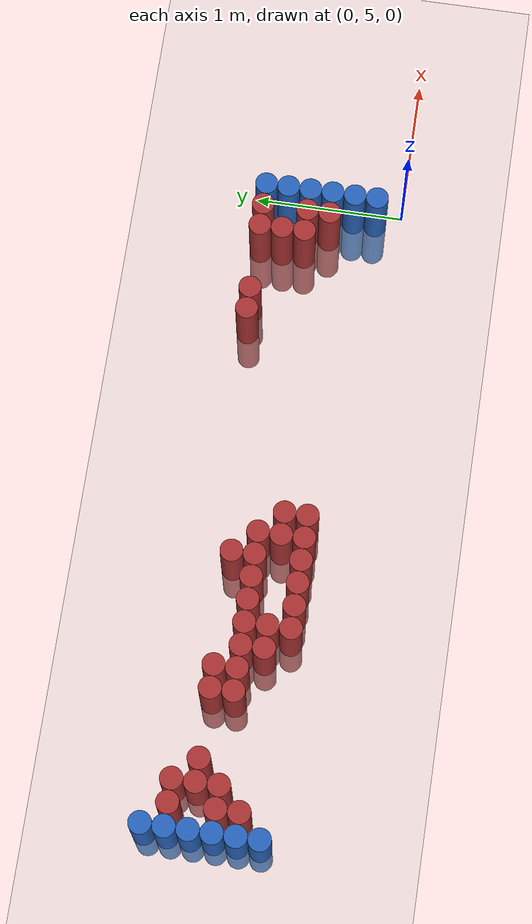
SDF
<sdf version="1.6">
 <world name="default">
  <model name="ground_plane">
   <static>1</static>
   <link name="link">
    <collision name="collision">
     <geometry><plane><normal>0 0 1</normal><size>100 100</size></plane></geometry>
     <surface><friction><ode><mu>100</mu><mu2>50</mu2></ode></friction></surface>
    </collision>
    <visual name="visual">
     <cast_shadows>0</cast_shadows>
     <geometry><plane><normal>0 0 1</normal><size>100 100</size></plane></geometry>
     <material>
      <script><uri>file://media/materials/scripts/gazebo.material</uri><name>Gazebo/Grey</name></script>
     </material>
    </visual>
   </link>
  </model>
  <model name="unit_cylinder_97">
   <static>1</static>
   <pose>-4.425000 5.325000 0.000000 0.000000 0.000000 0.000000</pose>
   <link name="link">
    <inertial>
     <mass>1</mass>
     <inertia><ixx>0.145833</ixx><ixy>0</ixy><ixz>0</ixz><iyy>0.145833</iyy><iyz>0</iyz><izz>0.125</izz></inertia>
    </inertial>
    <collision name="collision">
     <geometry><cylinder><radius>0.075000</radius><length>1</length></cylinder></geometry>
    </collision>
    <visual name="visual">
     <geometry><cylinder><radius>0.075000</radius><length>1</length></cylinder></geometry>
     <material>
      <ambient>0.152000 0.379000 0.720000 1</ambient>
      <diffuse>0.152000 0.379000 0.720000 1</diffuse>
     </material>
     <material>
      <script><name>Gazebo/Grey</name><uri>file://media/materials/scripts/gazebo.material</uri></script>
     </material>
    </visual>
   </link>
  </model>
  <model name="unit_cylinder_98">
   <static>1</static>
   <pose>-4.425000 5.475000 0.000000 0.000000 0.000000 0.000000</pose>
   <link name="link">
    <inertial>
     <mass>1</mass>
     <inertia><ixx>0.145833</ixx><ixy>0</ixy><ixz>0</ixz><iyy>0.145833</iyy><iyz>0</iyz><izz>0.125</izz></inertia>
    </inertial>
    <collision name="collision">
     <geometry><cylinder><radius>0.075000</radius><length>1</length></cylinder></geometry>
    </collision>
    <visual name="visual">
     <geometry><cylinder><radius>0.075000</radius><length>1</length></cylinder></geometry>
     <material>
      <ambient>0.152000 0.379000 0.720000 1</ambient>
      <diffuse>0.152000 0.379000 0.720000 1</diffuse>
     </material>
     <material>
      <script><name>Gazebo/Grey</name><uri>file://media/materials/scripts/gazebo.material</uri></script>
     </material>
    </visual>
   </link>
  </model>
  <model name="unit_cylinder_99">
   <static>1</static>
   <pose>-4.425000 5.625000 0.000000 0.000000 0.000000 0.000000</pose>
   <link name="link">
    <inertial>
     <mass>1</mass>
     <inertia><ixx>0.145833</ixx><ixy>0</ixy><ixz>0</ixz><iyy>0.145833</iyy><iyz>0</iyz><izz>0.125</izz></inertia>
    </inertial>
    <collision name="collision">
     <geometry><cylinder><radius>0.075000</radius><length>1</length></cylinder></geometry>
    </collision>
    <visual name="visual">
     <geometry><cylinder><radius>0.075000</radius><length>1</length></cylinder></geometry>
     <material>
      <ambient>0.152000 0.379000 0.720000 1</ambient>
      <diffuse>0.152000 0.379000 0.720000 1</diffuse>
     </material>
     <material>
      <script><name>Gazebo/Grey</name><uri>file://media/materials/scripts/gazebo.material</uri></script>
     </material>
    </visual>
   </link>
  </model>
  <model name="unit_cylinder_100">
   <static>1</static>
   <pose>-4.425000 5.775000 0.000000 0.000000 0.000000 0.000000</pose>
   <link name="link">
    <inertial>
     <mass>1</mass>
     <inertia><ixx>0.145833</ixx><ixy>0</ixy><ixz>0</ixz><iyy>0.145833</iyy><iyz>0</iyz><izz>0.125</izz></inertia>
    </inertial>
    <collision name="collision">
     <geometry><cylinder><radius>0.075000</radius><length>1</length></cylinder></geometry>
    </collision>
    <visual name="visual">
     <geometry><cylinder><radius>0.075000</radius><length>1</length></cylinder></geometry>
     <material>
      <ambient>0.152000 0.379000 0.720000 1</ambient>
      <diffuse>0.152000 0.379000 0.720000 1</diffuse>
     </material>
     <material>
      <script><name>Gazebo/Grey</name><uri>file://media/materials/scripts/gazebo.material</uri></script>
     </material>
    </visual>
   </link>
  </model>
  <model name="unit_cylinder_101">
   <static>1</static>
   <pose>-4.425000 5.925000 0.000000 0.000000 0.000000 0.000000</pose>
   <link name="link">
    <inertial>
     <mass>1</mass>
     <inertia><ixx>0.145833</ixx><ixy>0</ixy><ixz>0</ixz><iyy>0.145833</iyy><iyz>0</iyz><izz>0.125</izz></inertia>
    </inertial>
    <collision name="collision">
     <geometry><cylinder><radius>0.075000</radius><length>1</length></cylinder></geometry>
    </collision>
    <visual name="visual">
     <geometry><cylinder><radius>0.075000</radius><length>1</length></cylinder></geometry>
     <material>
      <ambient>0.152000 0.379000 0.720000 1</ambient>
      <diffuse>0.152000 0.379000 0.720000 1</diffuse>
     </material>
     <material>
      <script><name>Gazebo/Grey</name><uri>file://media/materials/scripts/gazebo.material</uri></script>
     </material>
    </visual>
   </link>
  </model>
  <model name="unit_cylinder_102">
   <static>1</static>
   <pose>-4.425000 6.075000 0.000000 0.000000 0.000000 0.000000</pose>
   <link name="link">
    <inertial>
     <mass>1</mass>
     <inertia><ixx>0.145833</ixx><ixy>0</ixy><ixz>0</ixz><iyy>0.145833</iyy><iyz>0</iyz><izz>0.125</izz></inertia>
    </inertial>
    <collision name="collision">
     <geometry><cylinder><radius>0.075000</radius><length>1</length></cylinder></geometry>
    </collision>
    <visual name="visual">
     <geometry><cylinder><radius>0.075000</radius><length>1</length></cylinder></geometry>
     <material>
      <ambient>0.152000 0.379000 0.720000 1</ambient>
      <diffuse>0.152000 0.379000 0.720000 1</diffuse>
     </material>
     <material>
      <script><name>Gazebo/Grey</name><uri>file://media/materials/scripts/gazebo.material</uri></script>
     </material>
    </visual>
   </link>
  </model>
  <model name="unit_cylinder_126">
   <static>1</static>
   <pose>-4.275000 5.475000 0.000000 0.000000 0.000000 0.000000</pose>
   <link name="link">
    <inertial>
     <mass>1</mass>
     <inertia><ixx>0.145833</ixx><ixy>0</ixy><ixz>0</ixz><iyy>0.145833</iyy><iyz>0</iyz><izz>0.125</izz></inertia>
    </inertial>
    <collision name="collision">
     <geometry><cylinder><radius>0.075000</radius><length>1</length></cylinder></geometry>
    </collision>
    <visual name="visual">
     <geometry><cylinder><radius>0.075000</radius><length>1</length></cylinder></geometry>
     <material>
      <ambient>0.648000 0.192000 0.192000 1</ambient>
      <diffuse>0.648000 0.192000 0.192000 1</diffuse>
     </material>
     <material>
      <script><name>Gazebo/Grey</name><uri>file://media/materials/scripts/gazebo.material</uri></script>
     </material>
    </visual>
   </link>
  </model>
  <model name="unit_cylinder_127">
   <static>1</static>
   <pose>-4.275000 5.625000 0.000000 0.000000 0.000000 0.000000</pose>
   <link name="link">
    <inertial>
     <mass>1</mass>
     <inertia><ixx>0.145833</ixx><ixy>0</ixy><ixz>0</ixz><iyy>0.145833</iyy><iyz>0</iyz><izz>0.125</izz></inertia>
    </inertial>
    <collision name="collision">
     <geometry><cylinder><radius>0.075000</radius><length>1</length></cylinder></geometry>
    </collision>
    <visual name="visual">
     <geometry><cylinder><radius>0.075000</radius><length>1</length></cylinder></geometry>
     <material>
      <ambient>0.648000 0.192000 0.192000 1</ambient>
      <diffuse>0.648000 0.192000 0.192000 1</diffuse>
     </material>
     <material>
      <script><name>Gazebo/Grey</name><uri>file://media/materials/scripts/gazebo.material</uri></script>
     </material>
    </visual>
   </link>
  </model>
  <model name="unit_cylinder_128">
   <static>1</static>
   <pose>-4.275000 5.925000 0.000000 0.000000 0.000000 0.000000</pose>
   <link name="link">
    <inertial>
     <mass>1</mass>
     <inertia><ixx>0.145833</ixx><ixy>0</ixy><ixz>0</ixz><iyy>0.145833</iyy><iyz>0</iyz><izz>0.125</izz></inertia>
    </inertial>
    <collision name="collision">
     <geometry><cylinder><radius>0.075000</radius><length>1</length></cylinder></geometry>
    </collision>
    <visual name="visual">
     <geometry><cylinder><radius>0.075000</radius><length>1</length></cylinder></geometry>
     <material>
      <ambient>0.648000 0.192000 0.192000 1</ambient>
      <diffuse>0.648000 0.192000 0.192000 1</diffuse>
     </material>
     <material>
      <script><name>Gazebo/Grey</name><uri>file://media/materials/scripts/gazebo.material</uri></script>
     </material>
    </visual>
   </link>
  </model>
  <model name="unit_cylinder_138">
   <static>1</static>
   <pose>-4.125000 5.625000 0.000000 0.000000 0.000000 0.000000</pose>
   <link name="link">
    <inertial>
     <mass>1</mass>
     <inertia><ixx>0.145833</ixx><ixy>0</ixy><ixz>0</ixz><iyy>0.145833</iyy><iyz>0</iyz><izz>0.125</izz></inertia>
    </inertial>
    <collision name="collision">
     <geometry><cylinder><radius>0.075000</radius><length>1</length></cylinder></geometry>
    </collision>
    <visual name="visual">
     <geometry><cylinder><radius>0.075000</radius><length>1</length></cylinder></geometry>
     <material>
      <ambient>0.648000 0.192000 0.192000 1</ambient>
      <diffuse>0.648000 0.192000 0.192000 1</diffuse>
     </material>
     <material>
      <script><name>Gazebo/Grey</name><uri>file://media/materials/scripts/gazebo.material</uri></script>
     </material>
    </visual>
   </link>
  </model>
  <model name="unit_cylinder_139">
   <static>1</static>
   <pose>-4.125000 5.775000 0.000000 0.000000 0.000000 0.000000</pose>
   <link name="link">
    <inertial>
     <mass>1</mass>
     <inertia><ixx>0.145833</ixx><ixy>0</ixy><ixz>0</ixz><iyy>0.145833</iyy><iyz>0</iyz><izz>0.125</izz></inertia>
    </inertial>
    <collision name="collision">
     <geometry><cylinder><radius>0.075000</radius><length>1</length></cylinder></geometry>
    </collision>
    <visual name="visual">
     <geometry><cylinder><radius>0.075000</radius><length>1</length></cylinder></geometry>
     <material>
      <ambient>0.648000 0.192000 0.192000 1</ambient>
      <diffuse>0.648000 0.192000 0.192000 1</diffuse>
     </material>
     <material>
      <script><name>Gazebo/Grey</name><uri>file://media/materials/scripts/gazebo.material</uri></script>
     </material>
    </visual>
   </link>
  </model>
  <model name="unit_cylinder_140">
   <static>1</static>
   <pose>-4.125000 5.925000 0.000000 0.000000 0.000000 0.000000</pose>
   <link name="link">
    <inertial>
     <mass>1</mass>
     <inertia><ixx>0.145833</ixx><ixy>0</ixy><ixz>0</ixz><iyy>0.145833</iyy><iyz>0</iyz><izz>0.125</izz></inertia>
    </inertial>
    <collision name="collision">
     <geometry><cylinder><radius>0.075000</radius><length>1</length></cylinder></geometry>
    </collision>
    <visual name="visual">
     <geometry><cylinder><radius>0.075000</radius><length>1</length></cylinder></geometry>
     <material>
      <ambient>0.648000 0.192000 0.192000 1</ambient>
      <diffuse>0.648000 0.192000 0.192000 1</diffuse>
     </material>
     <material>
      <script><name>Gazebo/Grey</name><uri>file://media/materials/scripts/gazebo.material</uri></script>
     </material>
    </visual>
   </link>
  </model>
  <model name="unit_cylinder_148">
   <static>1</static>
   <pose>-3.975000 5.775000 0.000000 0.000000 0.000000 0.000000</pose>
   <link name="link">
    <inertial>
     <mass>1</mass>
     <inertia><ixx>0.145833</ixx><ixy>0</ixy><ixz>0</ixz><iyy>0.145833</iyy><iyz>0</iyz><izz>0.125</izz></inertia>
    </inertial>
    <collision name="collision">
     <geometry><cylinder><radius>0.075000</radius><length>1</length></cylinder></geometry>
    </collision>
    <visual name="visual">
     <geometry><cylinder><radius>0.075000</radius><length>1</length></cylinder></geometry>
     <material>
      <ambient>0.648000 0.192000 0.192000 1</ambient>
      <diffuse>0.648000 0.192000 0.192000 1</diffuse>
     </material>
     <material>
      <script><name>Gazebo/Grey</name><uri>file://media/materials/scripts/gazebo.material</uri></script>
     </material>
    </visual>
   </link>
  </model>
  <model name="unit_cylinder_166">
   <static>1</static>
   <pose>-3.525000 5.625000 0.000000 0.000000 0.000000 0.000000</pose>
   <link name="link">
    <inertial>
     <mass>1</mass>
     <inertia><ixx>0.145833</ixx><ixy>0</ixy><ixz>0</ixz><iyy>0.145833</iyy><iyz>0</iyz><izz>0.125</izz></inertia>
    </inertial>
    <collision name="collision">
     <geometry><cylinder><radius>0.075000</radius><length>1</length></cylinder></geometry>
    </collision>
    <visual name="visual">
     <geometry><cylinder><radius>0.075000</radius><length>1</length></cylinder></geometry>
     <material>
      <ambient>0.648000 0.192000 0.192000 1</ambient>
      <diffuse>0.648000 0.192000 0.192000 1</diffuse>
     </material>
     <material>
      <script><name>Gazebo/Grey</name><uri>file://media/materials/scripts/gazebo.material</uri></script>
     </material>
    </visual>
   </link>
  </model>
  <model name="unit_cylinder_167">
   <static>1</static>
   <pose>-3.525000 5.775000 0.000000 0.000000 0.000000 0.000000</pose>
   <link name="link">
    <inertial>
     <mass>1</mass>
     <inertia><ixx>0.145833</ixx><ixy>0</ixy><ixz>0</ixz><iyy>0.145833</iyy><iyz>0</iyz><izz>0.125</izz></inertia>
    </inertial>
    <collision name="collision">
     <geometry><cylinder><radius>0.075000</radius><length>1</length></cylinder></geometry>
    </collision>
    <visual name="visual">
     <geometry><cylinder><radius>0.075000</radius><length>1</length></cylinder></geometry>
     <material>
      <ambient>0.648000 0.192000 0.192000 1</ambient>
      <diffuse>0.648000 0.192000 0.192000 1</diffuse>
     </material>
     <material>
      <script><name>Gazebo/Grey</name><uri>file://media/materials/scripts/gazebo.material</uri></script>
     </material>
    </visual>
   </link>
  </model>
  <model name="unit_cylinder_168">
   <static>1</static>
   <pose>-3.375000 5.625000 0.000000 0.000000 0.000000 0.000000</pose>
   <link name="link">
    <inertial>
     <mass>1</mass>
     <inertia><ixx>0.145833</ixx><ixy>0</ixy><ixz>0</ixz><iyy>0.145833</iyy><iyz>0</iyz><izz>0.125</izz></inertia>
    </inertial>
    <collision name="collision">
     <geometry><cylinder><radius>0.075000</radius><length>1</length></cylinder></geometry>
    </collision>
    <visual name="visual">
     <geometry><cylinder><radius>0.075000</radius><length>1</length></cylinder></geometry>
     <material>
      <ambient>0.648000 0.192000 0.192000 1</ambient>
      <diffuse>0.648000 0.192000 0.192000 1</diffuse>
     </material>
     <material>
      <script><name>Gazebo/Grey</name><uri>file://media/materials/scripts/gazebo.material</uri></script>
     </material>
    </visual>
   </link>
  </model>
  <model name="unit_cylinder_169">
   <static>1</static>
   <pose>-3.375000 5.775000 0.000000 0.000000 0.000000 0.000000</pose>
   <link name="link">
    <inertial>
     <mass>1</mass>
     <inertia><ixx>0.145833</ixx><ixy>0</ixy><ixz>0</ixz><iyy>0.145833</iyy><iyz>0</iyz><izz>0.125</izz></inertia>
    </inertial>
    <collision name="collision">
     <geometry><cylinder><radius>0.075000</radius><length>1</length></cylinder></geometry>
    </collision>
    <visual name="visual">
     <geometry><cylinder><radius>0.075000</radius><length>1</length></cylinder></geometry>
     <material>
      <ambient>0.648000 0.192000 0.192000 1</ambient>
      <diffuse>0.648000 0.192000 0.192000 1</diffuse>
     </material>
     <material>
      <script><name>Gazebo/Grey</name><uri>file://media/materials/scripts/gazebo.material</uri></script>
     </material>
    </visual>
   </link>
  </model>
  <model name="unit_cylinder_170">
   <static>1</static>
   <pose>-3.225000 5.475000 0.000000 0.000000 0.000000 0.000000</pose>
   <link name="link">
    <inertial>
     <mass>1</mass>
     <inertia><ixx>0.145833</ixx><ixy>0</ixy><ixz>0</ixz><iyy>0.145833</iyy><iyz>0</iyz><izz>0.125</izz></inertia>
    </inertial>
    <collision name="collision">
     <geometry><cylinder><radius>0.075000</radius><length>1</length></cylinder></geometry>
    </collision>
    <visual name="visual">
     <geometry><cylinder><radius>0.075000</radius><length>1</length></cylinder></geometry>
     <material>
      <ambient>0.648000 0.192000 0.192000 1</ambient>
      <diffuse>0.648000 0.192000 0.192000 1</diffuse>
     </material>
     <material>
      <script><name>Gazebo/Grey</name><uri>file://media/materials/scripts/gazebo.material</uri></script>
     </material>
    </visual>
   </link>
  </model>
  <model name="unit_cylinder_171">
   <static>1</static>
   <pose>-3.225000 5.625000 0.000000 0.000000 0.000000 0.000000</pose>
   <link name="link">
    <inertial>
     <mass>1</mass>
     <inertia><ixx>0.145833</ixx><ixy>0</ixy><ixz>0</ixz><iyy>0.145833</iyy><iyz>0</iyz><izz>0.125</izz></inertia>
    </inertial>
    <collision name="collision">
     <geometry><cylinder><radius>0.075000</radius><length>1</length></cylinder></geometry>
    </collision>
    <visual name="visual">
     <geometry><cylinder><radius>0.075000</radius><length>1</length></cylinder></geometry>
     <material>
      <ambient>0.648000 0.192000 0.192000 1</ambient>
      <diffuse>0.648000 0.192000 0.192000 1</diffuse>
     </material>
     <material>
      <script><name>Gazebo/Grey</name><uri>file://media/materials/scripts/gazebo.material</uri></script>
     </material>
    </visual>
   </link>
  </model>
  <model name="unit_cylinder_175">
   <static>1</static>
   <pose>-3.075000 5.325000 0.000000 0.000000 0.000000 0.000000</pose>
   <link name="link">
    <inertial>
     <mass>1</mass>
     <inertia><ixx>0.145833</ixx><ixy>0</ixy><ixz>0</ixz><iyy>0.145833</iyy><iyz>0</iyz><izz>0.125</izz></inertia>
    </inertial>
    <collision name="collision">
     <geometry><cylinder><radius>0.075000</radius><length>1</length></cylinder></geometry>
    </collision>
    <visual name="visual">
     <geometry><cylinder><radius>0.075000</radius><length>1</length></cylinder></geometry>
     <material>
      <ambient>0.648000 0.192000 0.192000 1</ambient>
      <diffuse>0.648000 0.192000 0.192000 1</diffuse>
     </material>
     <material>
      <script><name>Gazebo/Grey</name><uri>file://media/materials/scripts/gazebo.material</uri></script>
     </material>
    </visual>
   </link>
  </model>
  <model name="unit_cylinder_176">
   <static>1</static>
   <pose>-3.075000 5.475000 0.000000 0.000000 0.000000 0.000000</pose>
   <link name="link">
    <inertial>
     <mass>1</mass>
     <inertia><ixx>0.145833</ixx><ixy>0</ixy><ixz>0</ixz><iyy>0.145833</iyy><iyz>0</iyz><izz>0.125</izz></inertia>
    </inertial>
    <collision name="collision">
     <geometry><cylinder><radius>0.075000</radius><length>1</length></cylinder></geometry>
    </collision>
    <visual name="visual">
     <geometry><cylinder><radius>0.075000</radius><length>1</length></cylinder></geometry>
     <material>
      <ambient>0.648000 0.192000 0.192000 1</ambient>
      <diffuse>0.648000 0.192000 0.192000 1</diffuse>
     </material>
     <material>
      <script><name>Gazebo/Grey</name><uri>file://media/materials/scripts/gazebo.material</uri></script>
     </material>
    </visual>
   </link>
  </model>
  <model name="unit_cylinder_177">
   <static>1</static>
   <pose>-3.075000 5.625000 0.000000 0.000000 0.000000 0.000000</pose>
   <link name="link">
    <inertial>
     <mass>1</mass>
     <inertia><ixx>0.145833</ixx><ixy>0</ixy><ixz>0</ixz><iyy>0.145833</iyy><iyz>0</iyz><izz>0.125</izz></inertia>
    </inertial>
    <collision name="collision">
     <geometry><cylinder><radius>0.075000</radius><length>1</length></cylinder></geometry>
    </collision>
    <visual name="visual">
     <geometry><cylinder><radius>0.075000</radius><length>1</length></cylinder></geometry>
     <material>
      <ambient>0.648000 0.192000 0.192000 1</ambient>
      <diffuse>0.648000 0.192000 0.192000 1</diffuse>
     </material>
     <material>
      <script><name>Gazebo/Grey</name><uri>file://media/materials/scripts/gazebo.material</uri></script>
     </material>
    </visual>
   </link>
  </model>
  <model name="unit_cylinder_181">
   <static>1</static>
   <pose>-2.925000 5.325000 0.000000 0.000000 0.000000 0.000000</pose>
   <link name="link">
    <inertial>
     <mass>1</mass>
     <inertia><ixx>0.145833</ixx><ixy>0</ixy><ixz>0</ixz><iyy>0.145833</iyy><iyz>0</iyz><izz>0.125</izz></inertia>
    </inertial>
    <collision name="collision">
     <geometry><cylinder><radius>0.075000</radius><length>1</length></cylinder></geometry>
    </collision>
    <visual name="visual">
     <geometry><cylinder><radius>0.075000</radius><length>1</length></cylinder></geometry>
     <material>
      <ambient>0.648000 0.192000 0.192000 1</ambient>
      <diffuse>0.648000 0.192000 0.192000 1</diffuse>
     </material>
     <material>
      <script><name>Gazebo/Grey</name><uri>file://media/materials/scripts/gazebo.material</uri></script>
     </material>
    </visual>
   </link>
  </model>
  <model name="unit_cylinder_182">
   <static>1</static>
   <pose>-2.925000 5.625000 0.000000 0.000000 0.000000 0.000000</pose>
   <link name="link">
    <inertial>
     <mass>1</mass>
     <inertia><ixx>0.145833</ixx><ixy>0</ixy><ixz>0</ixz><iyy>0.145833</iyy><iyz>0</iyz><izz>0.125</izz></inertia>
    </inertial>
    <collision name="collision">
     <geometry><cylinder><radius>0.075000</radius><length>1</length></cylinder></geometry>
    </collision>
    <visual name="visual">
     <geometry><cylinder><radius>0.075000</radius><length>1</length></cylinder></geometry>
     <material>
      <ambient>0.648000 0.192000 0.192000 1</ambient>
      <diffuse>0.648000 0.192000 0.192000 1</diffuse>
     </material>
     <material>
      <script><name>Gazebo/Grey</name><uri>file://media/materials/scripts/gazebo.material</uri></script>
     </material>
    </visual>
   </link>
  </model>
  <model name="unit_cylinder_186">
   <static>1</static>
   <pose>-2.775000 5.325000 0.000000 0.000000 0.000000 0.000000</pose>
   <link name="link">
    <inertial>
     <mass>1</mass>
     <inertia><ixx>0.145833</ixx><ixy>0</ixy><ixz>0</ixz><iyy>0.145833</iyy><iyz>0</iyz><izz>0.125</izz></inertia>
    </inertial>
    <collision name="collision">
     <geometry><cylinder><radius>0.075000</radius><length>1</length></cylinder></geometry>
    </collision>
    <visual name="visual">
     <geometry><cylinder><radius>0.075000</radius><length>1</length></cylinder></geometry>
     <material>
      <ambient>0.648000 0.192000 0.192000 1</ambient>
      <diffuse>0.648000 0.192000 0.192000 1</diffuse>
     </material>
     <material>
      <script><name>Gazebo/Grey</name><uri>file://media/materials/scripts/gazebo.material</uri></script>
     </material>
    </visual>
   </link>
  </model>
  <model name="unit_cylinder_187">
   <static>1</static>
   <pose>-2.775000 5.625000 0.000000 0.000000 0.000000 0.000000</pose>
   <link name="link">
    <inertial>
     <mass>1</mass>
     <inertia><ixx>0.145833</ixx><ixy>0</ixy><ixz>0</ixz><iyy>0.145833</iyy><iyz>0</iyz><izz>0.125</izz></inertia>
    </inertial>
    <collision name="collision">
     <geometry><cylinder><radius>0.075000</radius><length>1</length></cylinder></geometry>
    </collision>
    <visual name="visual">
     <geometry><cylinder><radius>0.075000</radius><length>1</length></cylinder></geometry>
     <material>
      <ambient>0.648000 0.192000 0.192000 1</ambient>
      <diffuse>0.648000 0.192000 0.192000 1</diffuse>
     </material>
     <material>
      <script><name>Gazebo/Grey</name><uri>file://media/materials/scripts/gazebo.material</uri></script>
     </material>
    </visual>
   </link>
  </model>
  <model name="unit_cylinder_190">
   <static>1</static>
   <pose>-2.625000 5.325000 0.000000 0.000000 0.000000 0.000000</pose>
   <link name="link">
    <inertial>
     <mass>1</mass>
     <inertia><ixx>0.145833</ixx><ixy>0</ixy><ixz>0</ixz><iyy>0.145833</iyy><iyz>0</iyz><izz>0.125</izz></inertia>
    </inertial>
    <collision name="collision">
     <geometry><cylinder><radius>0.075000</radius><length>1</length></cylinder></geometry>
    </collision>
    <visual name="visual">
     <geometry><cylinder><radius>0.075000</radius><length>1</length></cylinder></geometry>
     <material>
      <ambient>0.648000 0.192000 0.192000 1</ambient>
      <diffuse>0.648000 0.192000 0.192000 1</diffuse>
     </material>
     <material>
      <script><name>Gazebo/Grey</name><uri>file://media/materials/scripts/gazebo.material</uri></script>
     </material>
    </visual>
   </link>
  </model>
  <model name="unit_cylinder_191">
   <static>1</static>
   <pose>-2.625000 5.625000 0.000000 0.000000 0.000000 0.000000</pose>
   <link name="link">
    <inertial>
     <mass>1</mass>
     <inertia><ixx>0.145833</ixx><ixy>0</ixy><ixz>0</ixz><iyy>0.145833</iyy><iyz>0</iyz><izz>0.125</izz></inertia>
    </inertial>
    <collision name="collision">
     <geometry><cylinder><radius>0.075000</radius><length>1</length></cylinder></geometry>
    </collision>
    <visual name="visual">
     <geometry><cylinder><radius>0.075000</radius><length>1</length></cylinder></geometry>
     <material>
      <ambient>0.648000 0.192000 0.192000 1</ambient>
      <diffuse>0.648000 0.192000 0.192000 1</diffuse>
     </material>
     <material>
      <script><name>Gazebo/Grey</name><uri>file://media/materials/scripts/gazebo.material</uri></script>
     </material>
    </visual>
   </link>
  </model>
  <model name="unit_cylinder_192">
   <static>1</static>
   <pose>-2.625000 5.775000 0.000000 0.000000 0.000000 0.000000</pose>
   <link name="link">
    <inertial>
     <mass>1</mass>
     <inertia><ixx>0.145833</ixx><ixy>0</ixy><ixz>0</ixz><iyy>0.145833</iyy><iyz>0</iyz><izz>0.125</izz></inertia>
    </inertial>
    <collision name="collision">
     <geometry><cylinder><radius>0.075000</radius><length>1</length></cylinder></geometry>
    </collision>
    <visual name="visual">
     <geometry><cylinder><radius>0.075000</radius><length>1</length></cylinder></geometry>
     <material>
      <ambient>0.648000 0.192000 0.192000 1</ambient>
      <diffuse>0.648000 0.192000 0.192000 1</diffuse>
     </material>
     <material>
      <script><name>Gazebo/Grey</name><uri>file://media/materials/scripts/gazebo.material</uri></script>
     </material>
    </visual>
   </link>
  </model>
  <model name="unit_cylinder_196">
   <static>1</static>
   <pose>-2.475000 5.325000 0.000000 0.000000 0.000000 0.000000</pose>
   <link name="link">
    <inertial>
     <mass>1</mass>
     <inertia><ixx>0.145833</ixx><ixy>0</ixy><ixz>0</ixz><iyy>0.145833</iyy><iyz>0</iyz><izz>0.125</izz></inertia>
    </inertial>
    <collision name="collision">
     <geometry><cylinder><radius>0.075000</radius><length>1</length></cylinder></geometry>
    </collision>
    <visual name="visual">
     <geometry><cylinder><radius>0.075000</radius><length>1</length></cylinder></geometry>
     <material>
      <ambient>0.648000 0.192000 0.192000 1</ambient>
      <diffuse>0.648000 0.192000 0.192000 1</diffuse>
     </material>
     <material>
      <script><name>Gazebo/Grey</name><uri>file://media/materials/scripts/gazebo.material</uri></script>
     </material>
    </visual>
   </link>
  </model>
  <model name="unit_cylinder_197">
   <static>1</static>
   <pose>-2.475000 5.475000 0.000000 0.000000 0.000000 0.000000</pose>
   <link name="link">
    <inertial>
     <mass>1</mass>
     <inertia><ixx>0.145833</ixx><ixy>0</ixy><ixz>0</ixz><iyy>0.145833</iyy><iyz>0</iyz><izz>0.125</izz></inertia>
    </inertial>
    <collision name="collision">
     <geometry><cylinder><radius>0.075000</radius><length>1</length></cylinder></geometry>
    </collision>
    <visual name="visual">
     <geometry><cylinder><radius>0.075000</radius><length>1</length></cylinder></geometry>
     <material>
      <ambient>0.648000 0.192000 0.192000 1</ambient>
      <diffuse>0.648000 0.192000 0.192000 1</diffuse>
     </material>
     <material>
      <script><name>Gazebo/Grey</name><uri>file://media/materials/scripts/gazebo.material</uri></script>
     </material>
    </visual>
   </link>
  </model>
  <model name="unit_cylinder_198">
   <static>1</static>
   <pose>-2.475000 5.625000 0.000000 0.000000 0.000000 0.000000</pose>
   <link name="link">
    <inertial>
     <mass>1</mass>
     <inertia><ixx>0.145833</ixx><ixy>0</ixy><ixz>0</ixz><iyy>0.145833</iyy><iyz>0</iyz><izz>0.125</izz></inertia>
    </inertial>
    <collision name="collision">
     <geometry><cylinder><radius>0.075000</radius><length>1</length></cylinder></geometry>
    </collision>
    <visual name="visual">
     <geometry><cylinder><radius>0.075000</radius><length>1</length></cylinder></geometry>
     <material>
      <ambient>0.648000 0.192000 0.192000 1</ambient>
      <diffuse>0.648000 0.192000 0.192000 1</diffuse>
     </material>
     <material>
      <script><name>Gazebo/Grey</name><uri>file://media/materials/scripts/gazebo.material</uri></script>
     </material>
    </visual>
   </link>
  </model>
  <model name="unit_cylinder_204">
   <static>1</static>
   <pose>-2.325000 5.325000 0.000000 0.000000 0.000000 0.000000</pose>
   <link name="link">
    <inertial>
     <mass>1</mass>
     <inertia><ixx>0.145833</ixx><ixy>0</ixy><ixz>0</ixz><iyy>0.145833</iyy><iyz>0</iyz><izz>0.125</izz></inertia>
    </inertial>
    <collision name="collision">
     <geometry><cylinder><radius>0.075000</radius><length>1</length></cylinder></geometry>
    </collision>
    <visual name="visual">
     <geometry><cylinder><radius>0.075000</radius><length>1</length></cylinder></geometry>
     <material>
      <ambient>0.648000 0.192000 0.192000 1</ambient>
      <diffuse>0.648000 0.192000 0.192000 1</diffuse>
     </material>
     <material>
      <script><name>Gazebo/Grey</name><uri>file://media/materials/scripts/gazebo.material</uri></script>
     </material>
    </visual>
   </link>
  </model>
  <model name="unit_cylinder_205">
   <static>1</static>
   <pose>-2.325000 5.475000 0.000000 0.000000 0.000000 0.000000</pose>
   <link name="link">
    <inertial>
     <mass>1</mass>
     <inertia><ixx>0.145833</ixx><ixy>0</ixy><ixz>0</ixz><iyy>0.145833</iyy><iyz>0</iyz><izz>0.125</izz></inertia>
    </inertial>
    <collision name="collision">
     <geometry><cylinder><radius>0.075000</radius><length>1</length></cylinder></geometry>
    </collision>
    <visual name="visual">
     <geometry><cylinder><radius>0.075000</radius><length>1</length></cylinder></geometry>
     <material>
      <ambient>0.648000 0.192000 0.192000 1</ambient>
      <diffuse>0.648000 0.192000 0.192000 1</diffuse>
     </material>
     <material>
      <script><name>Gazebo/Grey</name><uri>file://media/materials/scripts/gazebo.material</uri></script>
     </material>
    </visual>
   </link>
  </model>
  <model name="unit_cylinder_223">
   <static>1</static>
   <pose>-0.975000 5.925000 0.000000 0.000000 0.000000 0.000000</pose>
   <link name="link">
    <inertial>
     <mass>1</mass>
     <inertia><ixx>0.145833</ixx><ixy>0</ixy><ixz>0</ixz><iyy>0.145833</iyy><iyz>0</iyz><izz>0.125</izz></inertia>
    </inertial>
    <collision name="collision">
     <geometry><cylinder><radius>0.075000</radius><length>1</length></cylinder></geometry>
    </collision>
    <visual name="visual">
     <geometry><cylinder><radius>0.075000</radius><length>1</length></cylinder></geometry>
     <material>
      <ambient>0.648000 0.192000 0.192000 1</ambient>
      <diffuse>0.648000 0.192000 0.192000 1</diffuse>
     </material>
     <material>
      <script><name>Gazebo/Grey</name><uri>file://media/materials/scripts/gazebo.material</uri></script>
     </material>
    </visual>
   </link>
  </model>
  <model name="unit_cylinder_226">
   <static>1</static>
   <pose>-0.825000 5.925000 0.000000 0.000000 0.000000 0.000000</pose>
   <link name="link">
    <inertial>
     <mass>1</mass>
     <inertia><ixx>0.145833</ixx><ixy>0</ixy><ixz>0</ixz><iyy>0.145833</iyy><iyz>0</iyz><izz>0.125</izz></inertia>
    </inertial>
    <collision name="collision">
     <geometry><cylinder><radius>0.075000</radius><length>1</length></cylinder></geometry>
    </collision>
    <visual name="visual">
     <geometry><cylinder><radius>0.075000</radius><length>1</length></cylinder></geometry>
     <material>
      <ambient>0.648000 0.192000 0.192000 1</ambient>
      <diffuse>0.648000 0.192000 0.192000 1</diffuse>
     </material>
     <material>
      <script><name>Gazebo/Grey</name><uri>file://media/materials/scripts/gazebo.material</uri></script>
     </material>
    </visual>
   </link>
  </model>
  <model name="unit_cylinder_236">
   <static>1</static>
   <pose>-0.375000 5.625000 0.000000 0.000000 0.000000 0.000000</pose>
   <link name="link">
    <inertial>
     <mass>1</mass>
     <inertia><ixx>0.145833</ixx><ixy>0</ixy><ixz>0</ixz><iyy>0.145833</iyy><iyz>0</iyz><izz>0.125</izz></inertia>
    </inertial>
    <collision name="collision">
     <geometry><cylinder><radius>0.075000</radius><length>1</length></cylinder></geometry>
    </collision>
    <visual name="visual">
     <geometry><cylinder><radius>0.075000</radius><length>1</length></cylinder></geometry>
     <material>
      <ambient>0.648000 0.192000 0.192000 1</ambient>
      <diffuse>0.648000 0.192000 0.192000 1</diffuse>
     </material>
     <material>
      <script><name>Gazebo/Grey</name><uri>file://media/materials/scripts/gazebo.material</uri></script>
     </material>
    </visual>
   </link>
  </model>
  <model name="unit_cylinder_237">
   <static>1</static>
   <pose>-0.375000 5.775000 0.000000 0.000000 0.000000 0.000000</pose>
   <link name="link">
    <inertial>
     <mass>1</mass>
     <inertia><ixx>0.145833</ixx><ixy>0</ixy><ixz>0</ixz><iyy>0.145833</iyy><iyz>0</iyz><izz>0.125</izz></inertia>
    </inertial>
    <collision name="collision">
     <geometry><cylinder><radius>0.075000</radius><length>1</length></cylinder></geometry>
    </collision>
    <visual name="visual">
     <geometry><cylinder><radius>0.075000</radius><length>1</length></cylinder></geometry>
     <material>
      <ambient>0.648000 0.192000 0.192000 1</ambient>
      <diffuse>0.648000 0.192000 0.192000 1</diffuse>
     </material>
     <material>
      <script><name>Gazebo/Grey</name><uri>file://media/materials/scripts/gazebo.material</uri></script>
     </material>
    </visual>
   </link>
  </model>
  <model name="unit_cylinder_238">
   <static>1</static>
   <pose>-0.375000 5.925000 0.000000 0.000000 0.000000 0.000000</pose>
   <link name="link">
    <inertial>
     <mass>1</mass>
     <inertia><ixx>0.145833</ixx><ixy>0</ixy><ixz>0</ixz><iyy>0.145833</iyy><iyz>0</iyz><izz>0.125</izz></inertia>
    </inertial>
    <collision name="collision">
     <geometry><cylinder><radius>0.075000</radius><length>1</length></cylinder></geometry>
    </collision>
    <visual name="visual">
     <geometry><cylinder><radius>0.075000</radius><length>1</length></cylinder></geometry>
     <material>
      <ambient>0.648000 0.192000 0.192000 1</ambient>
      <diffuse>0.648000 0.192000 0.192000 1</diffuse>
     </material>
     <material>
      <script><name>Gazebo/Grey</name><uri>file://media/materials/scripts/gazebo.material</uri></script>
     </material>
    </visual>
   </link>
  </model>
  <model name="unit_cylinder_243">
   <static>1</static>
   <pose>-0.225000 5.475000 0.000000 0.000000 0.000000 0.000000</pose>
   <link name="link">
    <inertial>
     <mass>1</mass>
     <inertia><ixx>0.145833</ixx><ixy>0</ixy><ixz>0</ixz><iyy>0.145833</iyy><iyz>0</iyz><izz>0.125</izz></inertia>
    </inertial>
    <collision name="collision">
     <geometry><cylinder><radius>0.075000</radius><length>1</length></cylinder></geometry>
    </collision>
    <visual name="visual">
     <geometry><cylinder><radius>0.075000</radius><length>1</length></cylinder></geometry>
     <material>
      <ambient>0.648000 0.192000 0.192000 1</ambient>
      <diffuse>0.648000 0.192000 0.192000 1</diffuse>
     </material>
     <material>
      <script><name>Gazebo/Grey</name><uri>file://media/materials/scripts/gazebo.material</uri></script>
     </material>
    </visual>
   </link>
  </model>
  <model name="unit_cylinder_244">
   <static>1</static>
   <pose>-0.225000 5.625000 0.000000 0.000000 0.000000 0.000000</pose>
   <link name="link">
    <inertial>
     <mass>1</mass>
     <inertia><ixx>0.145833</ixx><ixy>0</ixy><ixz>0</ixz><iyy>0.145833</iyy><iyz>0</iyz><izz>0.125</izz></inertia>
    </inertial>
    <collision name="collision">
     <geometry><cylinder><radius>0.075000</radius><length>1</length></cylinder></geometry>
    </collision>
    <visual name="visual">
     <geometry><cylinder><radius>0.075000</radius><length>1</length></cylinder></geometry>
     <material>
      <ambient>0.648000 0.192000 0.192000 1</ambient>
      <diffuse>0.648000 0.192000 0.192000 1</diffuse>
     </material>
     <material>
      <script><name>Gazebo/Grey</name><uri>file://media/materials/scripts/gazebo.material</uri></script>
     </material>
    </visual>
   </link>
  </model>
  <model name="unit_cylinder_245">
   <static>1</static>
   <pose>-0.225000 5.925000 0.000000 0.000000 0.000000 0.000000</pose>
   <link name="link">
    <inertial>
     <mass>1</mass>
     <inertia><ixx>0.145833</ixx><ixy>0</ixy><ixz>0</ixz><iyy>0.145833</iyy><iyz>0</iyz><izz>0.125</izz></inertia>
    </inertial>
    <collision name="collision">
     <geometry><cylinder><radius>0.075000</radius><length>1</length></cylinder></geometry>
    </collision>
    <visual name="visual">
     <geometry><cylinder><radius>0.075000</radius><length>1</length></cylinder></geometry>
     <material>
      <ambient>0.648000 0.192000 0.192000 1</ambient>
      <diffuse>0.648000 0.192000 0.192000 1</diffuse>
     </material>
     <material>
      <script><name>Gazebo/Grey</name><uri>file://media/materials/scripts/gazebo.material</uri></script>
     </material>
    </visual>
   </link>
  </model>
  <model name="unit_cylinder_260">
   <static>1</static>
   <pose>-0.075000 5.175000 0.000000 0.000000 0.000000 0.000000</pose>
   <link name="link">
    <inertial>
     <mass>1</mass>
     <inertia><ixx>0.145833</ixx><ixy>0</ixy><ixz>0</ixz><iyy>0.145833</iyy><iyz>0</iyz><izz>0.125</izz></inertia>
    </inertial>
    <collision name="collision">
     <geometry><cylinder><radius>0.075000</radius><length>1</length></cylinder></geometry>
    </collision>
    <visual name="visual">
     <geometry><cylinder><radius>0.075000</radius><length>1</length></cylinder></geometry>
     <material>
      <ambient>0.152000 0.379000 0.720000 1</ambient>
      <diffuse>0.152000 0.379000 0.720000 1</diffuse>
     </material>
     <material>
      <script><name>Gazebo/Grey</name><uri>file://media/materials/scripts/gazebo.material</uri></script>
     </material>
    </visual>
   </link>
  </model>
  <model name="unit_cylinder_261">
   <static>1</static>
   <pose>-0.075000 5.325000 0.000000 0.000000 0.000000 0.000000</pose>
   <link name="link">
    <inertial>
     <mass>1</mass>
     <inertia><ixx>0.145833</ixx><ixy>0</ixy><ixz>0</ixz><iyy>0.145833</iyy><iyz>0</iyz><izz>0.125</izz></inertia>
    </inertial>
    <collision name="collision">
     <geometry><cylinder><radius>0.075000</radius><length>1</length></cylinder></geometry>
    </collision>
    <visual name="visual">
     <geometry><cylinder><radius>0.075000</radius><length>1</length></cylinder></geometry>
     <material>
      <ambient>0.152000 0.379000 0.720000 1</ambient>
      <diffuse>0.152000 0.379000 0.720000 1</diffuse>
     </material>
     <material>
      <script><name>Gazebo/Grey</name><uri>file://media/materials/scripts/gazebo.material</uri></script>
     </material>
    </visual>
   </link>
  </model>
  <model name="unit_cylinder_262">
   <static>1</static>
   <pose>-0.075000 5.475000 0.000000 0.000000 0.000000 0.000000</pose>
   <link name="link">
    <inertial>
     <mass>1</mass>
     <inertia><ixx>0.145833</ixx><ixy>0</ixy><ixz>0</ixz><iyy>0.145833</iyy><iyz>0</iyz><izz>0.125</izz></inertia>
    </inertial>
    <collision name="collision">
     <geometry><cylinder><radius>0.075000</radius><length>1</length></cylinder></geometry>
    </collision>
    <visual name="visual">
     <geometry><cylinder><radius>0.075000</radius><length>1</length></cylinder></geometry>
     <material>
      <ambient>0.152000 0.379000 0.720000 1</ambient>
      <diffuse>0.152000 0.379000 0.720000 1</diffuse>
     </material>
     <material>
      <script><name>Gazebo/Grey</name><uri>file://media/materials/scripts/gazebo.material</uri></script>
     </material>
    </visual>
   </link>
  </model>
  <model name="unit_cylinder_263">
   <static>1</static>
   <pose>-0.075000 5.625000 0.000000 0.000000 0.000000 0.000000</pose>
   <link name="link">
    <inertial>
     <mass>1</mass>
     <inertia><ixx>0.145833</ixx><ixy>0</ixy><ixz>0</ixz><iyy>0.145833</iyy><iyz>0</iyz><izz>0.125</izz></inertia>
    </inertial>
    <collision name="collision">
     <geometry><cylinder><radius>0.075000</radius><length>1</length></cylinder></geometry>
    </collision>
    <visual name="visual">
     <geometry><cylinder><radius>0.075000</radius><length>1</length></cylinder></geometry>
     <material>
      <ambient>0.152000 0.379000 0.720000 1</ambient>
      <diffuse>0.152000 0.379000 0.720000 1</diffuse>
     </material>
     <material>
      <script><name>Gazebo/Grey</name><uri>file://media/materials/scripts/gazebo.material</uri></script>
     </material>
    </visual>
   </link>
  </model>
  <model name="unit_cylinder_264">
   <static>1</static>
   <pose>-0.075000 5.775000 0.000000 0.000000 0.000000 0.000000</pose>
   <link name="link">
    <inertial>
     <mass>1</mass>
     <inertia><ixx>0.145833</ixx><ixy>0</ixy><ixz>0</ixz><iyy>0.145833</iyy><iyz>0</iyz><izz>0.125</izz></inertia>
    </inertial>
    <collision name="collision">
     <geometry><cylinder><radius>0.075000</radius><length>1</length></cylinder></geometry>
    </collision>
    <visual name="visual">
     <geometry><cylinder><radius>0.075000</radius><length>1</length></cylinder></geometry>
     <material>
      <ambient>0.152000 0.379000 0.720000 1</ambient>
      <diffuse>0.152000 0.379000 0.720000 1</diffuse>
     </material>
     <material>
      <script><name>Gazebo/Grey</name><uri>file://media/materials/scripts/gazebo.material</uri></script>
     </material>
    </visual>
   </link>
  </model>
  <model name="unit_cylinder_265">
   <static>1</static>
   <pose>-0.075000 5.925000 0.000000 0.000000 0.000000 0.000000</pose>
   <link name="link">
    <inertial>
     <mass>1</mass>
     <inertia><ixx>0.145833</ixx><ixy>0</ixy><ixz>0</ixz><iyy>0.145833</iyy><iyz>0</iyz><izz>0.125</izz></inertia>
    </inertial>
    <collision name="collision">
     <geometry><cylinder><radius>0.075000</radius><length>1</length></cylinder></geometry>
    </collision>
    <visual name="visual">
     <geometry><cylinder><radius>0.075000</radius><length>1</length></cylinder></geometry>
     <material>
      <ambient>0.152000 0.379000 0.720000 1</ambient>
      <diffuse>0.152000 0.379000 0.720000 1</diffuse>
     </material>
     <material>
      <script><name>Gazebo/Grey</name><uri>file://media/materials/scripts/gazebo.material</uri></script>
     </material>
    </visual>
   </link>
  </model>
 </world>
</sdf>
